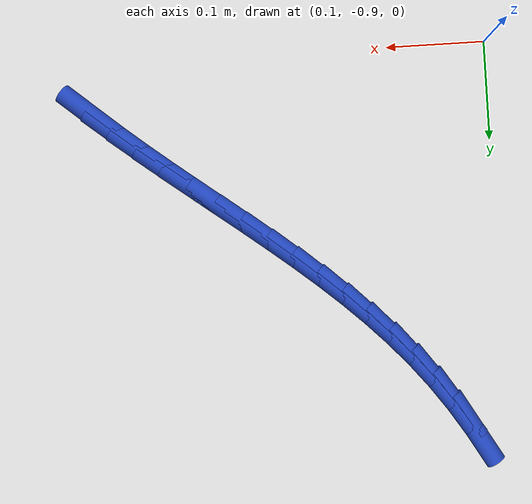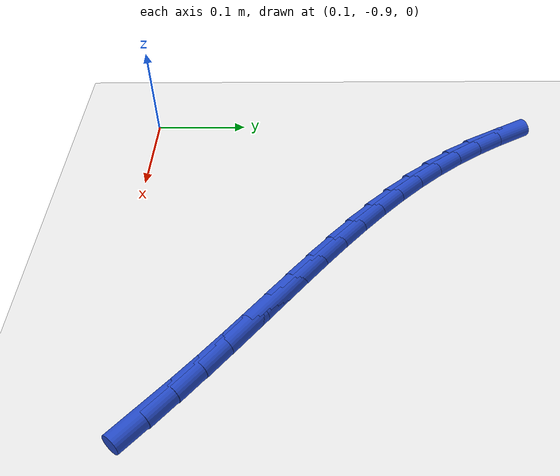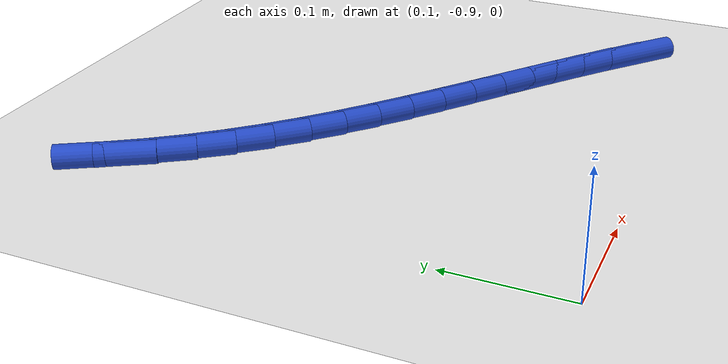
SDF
<sdf version="1.6">
 <world name="default">
  <model name="ground_plane">
   <static>1</static>
   <link name="link">
    <collision name="collision">
     <geometry><plane><normal>0 0 1</normal><size>100 100</size></plane></geometry>
     <surface><friction><ode><mu>100</mu><mu2>50</mu2></ode></friction></surface>
    </collision>
    <visual name="visual">
     <cast_shadows>0</cast_shadows>
     <geometry><plane><normal>0 0 1</normal><size>100 100</size></plane></geometry>
     <material>
      <script><uri>file://media/materials/scripts/gazebo.material</uri><name>Gazebo/WhiteGlow</name></script>
     </material>
    </visual>
   </link>
  </model>
  <model name="line">
   <link name="link_177">
    <pose>0.5006995219050164 -0.844909517859451 0.01 0 1.57 -0.704229321088201</pose>
    <collision name="collision">
     <geometry><cylinder><radius>0.01</radius><length>0.08</length></cylinder></geometry>
    </collision>
    <visual name="visual">
     <material>
      <script><name>Gazebo/Blue</name><uri>file://media/materials/scripts/gazebo.material</uri></script>
     </material>
     <geometry><cylinder><radius>0.01</radius><length>0.08</length></cylinder></geometry>
    </visual>
   </link>
   <link name="link_178">
    <pose>0.4763635561972201 -0.8242350422004104 0.01 0 1.57 -0.6822212250314488</pose>
    <collision name="collision">
     <geometry><cylinder><radius>0.01</radius><length>0.08</length></cylinder></geometry>
    </collision>
    <visual name="visual">
     <material>
      <script><name>Gazebo/Blue</name><uri>file://media/materials/scripts/gazebo.material</uri></script>
     </material>
     <geometry><cylinder><radius>0.01</radius><length>0.08</length></cylinder></geometry>
    </visual>
   </link>
   <link name="link_179">
    <pose>0.451625195660373 -0.8041390391141879 0.01 0 1.57 -0.6652535446432347</pose>
    <collision name="collision">
     <geometry><cylinder><radius>0.01</radius><length>0.08</length></cylinder></geometry>
    </collision>
    <visual name="visual">
     <material>
      <script><name>Gazebo/Blue</name><uri>file://media/materials/scripts/gazebo.material</uri></script>
     </material>
     <geometry><cylinder><radius>0.01</radius><length>0.08</length></cylinder></geometry>
    </visual>
   </link>
   <link name="link_180">
    <pose>0.42660348186824165 -0.7845080680824716 0.01 0 1.57 -0.6542441002211286</pose>
    <collision name="collision">
     <geometry><cylinder><radius>0.01</radius><length>0.08</length></cylinder></geometry>
    </collision>
    <visual name="visual">
     <material>
      <script><name>Gazebo/Blue</name><uri>file://media/materials/scripts/gazebo.material</uri></script>
     </material>
     <geometry><cylinder><radius>0.01</radius><length>0.08</length></cylinder></geometry>
    </visual>
   </link>
   <link name="link_181">
    <pose>0.4014320353984246 -0.7652035086716232 0.01 0 1.57 -0.6492214391990251</pose>
    <collision name="collision">
     <geometry><cylinder><radius>0.01</radius><length>0.08</length></cylinder></geometry>
    </collision>
    <visual name="visual">
     <material>
      <script><name>Gazebo/Blue</name><uri>file://media/materials/scripts/gazebo.material</uri></script>
     </material>
     <geometry><cylinder><radius>0.01</radius><length>0.08</length></cylinder></geometry>
    </visual>
   </link>
   <link name="link_182">
    <pose>0.37624447682852025 -0.746086740448005 0.01 0 1.57 -0.6502334140796434</pose>
    <collision name="collision">
     <geometry><cylinder><radius>0.01</radius><length>0.08</length></cylinder></geometry>
    </collision>
    <visual name="visual">
     <material>
      <script><name>Gazebo/Blue</name><uri>file://media/materials/scripts/gazebo.material</uri></script>
     </material>
     <geometry><cylinder><radius>0.01</radius><length>0.08</length></cylinder></geometry>
    </visual>
   </link>
   <link name="link_183">
    <pose>0.3511744267361266 -0.727019142977978 0.01 0 1.57 -0.6573532974530603</pose>
    <collision name="collision">
     <geometry><cylinder><radius>0.01</radius><length>0.08</length></cylinder></geometry>
    </collision>
    <visual name="visual">
     <material>
      <script><name>Gazebo/Blue</name><uri>file://media/materials/scripts/gazebo.material</uri></script>
     </material>
     <geometry><cylinder><radius>0.01</radius><length>0.08</length></cylinder></geometry>
    </visual>
   </link>
   <link name="link_184">
    <pose>0.3263555056988433 -0.7078620958279055 0.01 0 1.57 -0.6706796060144646</pose>
    <collision name="collision">
     <geometry><cylinder><radius>0.01</radius><length>0.08</length></cylinder></geometry>
    </collision>
    <visual name="visual">
     <material>
      <script><name>Gazebo/Blue</name><uri>file://media/materials/scripts/gazebo.material</uri></script>
     </material>
     <geometry><cylinder><radius>0.01</radius><length>0.08</length></cylinder></geometry>
    </visual>
   </link>
   <link name="link_185">
    <pose>0.30192133429426826 -0.6884769785641487 0.01 0 1.57 -0.6903290492663903</pose>
    <collision name="collision">
     <geometry><cylinder><radius>0.01</radius><length>0.08</length></cylinder></geometry>
    </collision>
    <visual name="visual">
     <material>
      <script><name>Gazebo/Blue</name><uri>file://media/materials/scripts/gazebo.material</uri></script>
     </material>
     <geometry><cylinder><radius>0.01</radius><length>0.08</length></cylinder></geometry>
    </visual>
   </link>
   <link name="link_186">
    <pose>0.27800553309999987 -0.6687251707530694 0.01 0 1.57 -0.7164216551879137</pose>
    <collision name="collision">
     <geometry><cylinder><radius>0.01</radius><length>0.08</length></cylinder></geometry>
    </collision>
    <visual name="visual">
     <material>
      <script><name>Gazebo/Blue</name><uri>file://media/materials/scripts/gazebo.material</uri></script>
     </material>
     <geometry><cylinder><radius>0.01</radius><length>0.08</length></cylinder></geometry>
    </visual>
   </link>
   <link name="link_187">
    <pose>0.2547417226936369 -0.6484680519610296 0.01 0 1.57 -0.7490569519763638</pose>
    <collision name="collision">
     <geometry><cylinder><radius>0.01</radius><length>0.08</length></cylinder></geometry>
    </collision>
    <visual name="visual">
     <material>
      <script><name>Gazebo/Blue</name><uri>file://media/materials/scripts/gazebo.material</uri></script>
     </material>
     <geometry><cylinder><radius>0.01</radius><length>0.08</length></cylinder></geometry>
    </visual>
   </link>
   <link name="link_188">
    <pose>0.23226352365277741 -0.6275670017543913 0.01 0 1.57 -0.7882803837288934</pose>
    <collision name="collision">
     <geometry><cylinder><radius>0.01</radius><length>0.08</length></cylinder></geometry>
    </collision>
    <visual name="visual">
     <material>
      <script><name>Gazebo/Blue</name><uri>file://media/materials/scripts/gazebo.material</uri></script>
     </material>
     <geometry><cylinder><radius>0.01</radius><length>0.08</length></cylinder></geometry>
    </visual>
   </link>
   <link name="link_189">
    <pose>0.21070455655501977 -0.6058833996995155 0.01 0 1.57 -0.8340402668301267</pose>
    <collision name="collision">
     <geometry><cylinder><radius>0.01</radius><length>0.08</length></cylinder></geometry>
    </collision>
    <visual name="visual">
     <material>
      <script><name>Gazebo/Blue</name><uri>file://media/materials/scripts/gazebo.material</uri></script>
     </material>
     <geometry><cylinder><radius>0.01</radius><length>0.08</length></cylinder></geometry>
    </visual>
   </link>
   <link name="link_190">
    <pose>0.19019844197796335 -0.5832786253627656 0.01 0 1.57 -0.8861319302100743</pose>
    <collision name="collision">
     <geometry><cylinder><radius>0.01</radius><length>0.08</length></cylinder></geometry>
    </collision>
    <visual name="visual">
     <material>
      <script><name>Gazebo/Blue</name><uri>file://media/materials/scripts/gazebo.material</uri></script>
     </material>
     <geometry><cylinder><radius>0.01</radius><length>0.08</length></cylinder></geometry>
    </visual>
   </link>
   <link name="link_191">
    <pose>0.17087868671115278 -0.5596142068890685 0.01 0 1.57 -0.9417005197464685</pose>
    <collision name="collision">
     <geometry><cylinder><radius>0.01</radius><length>0.08</length></cylinder></geometry>
    </collision>
    <visual name="visual">
     <material>
      <script><name>Gazebo/Blue</name><uri>file://media/materials/scripts/gazebo.material</uri></script>
     </material>
     <geometry><cylinder><radius>0.01</radius><length>0.08</length></cylinder></geometry>
    </visual>
   </link>
   <link name="link_192">
    <pose>0.15283093545971638 -0.5348141682621828 0.01 0 1.57 -0.9942098563243128</pose>
    <collision name="collision">
     <geometry><cylinder><radius>0.01</radius><length>0.08</length></cylinder></geometry>
    </collision>
    <visual name="visual">
     <material>
      <script><name>Gazebo/Blue</name><uri>file://media/materials/scripts/gazebo.material</uri></script>
     </material>
     <geometry><cylinder><radius>0.01</radius><length>0.08</length></cylinder></geometry>
    </visual>
   </link>
   <link name="link_193">
    <pose>0.136019003814491 -0.5089616116335771 0.01 0 1.57 -1.042727618045405</pose>
    <collision name="collision">
     <geometry><cylinder><radius>0.01</radius><length>0.08</length></cylinder></geometry>
    </collision>
    <visual name="visual">
     <material>
      <script><name>Gazebo/Blue</name><uri>file://media/materials/scripts/gazebo.material</uri></script>
     </material>
     <geometry><cylinder><radius>0.01</radius><length>0.08</length></cylinder></geometry>
    </visual>
   </link>
  </model>
 </world>
</sdf>
